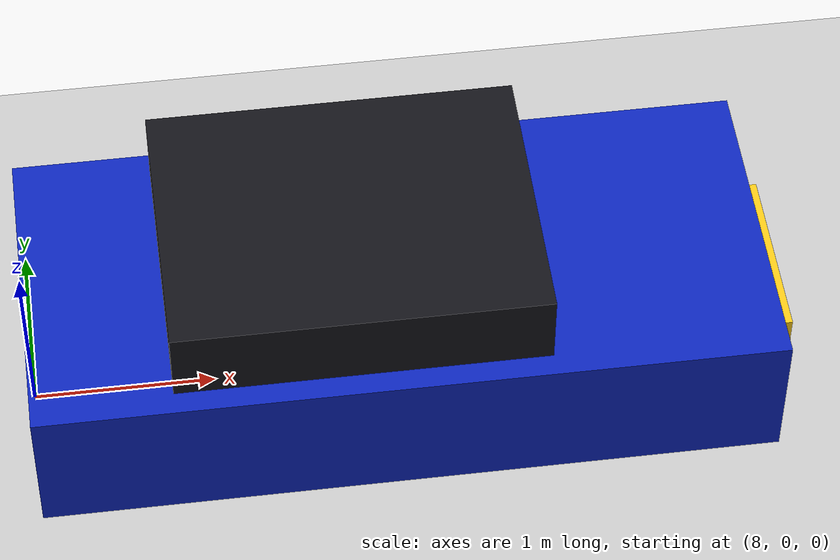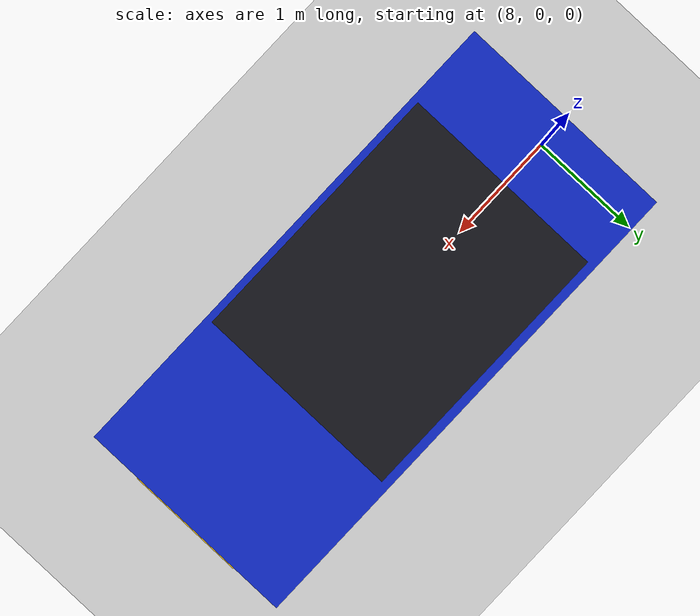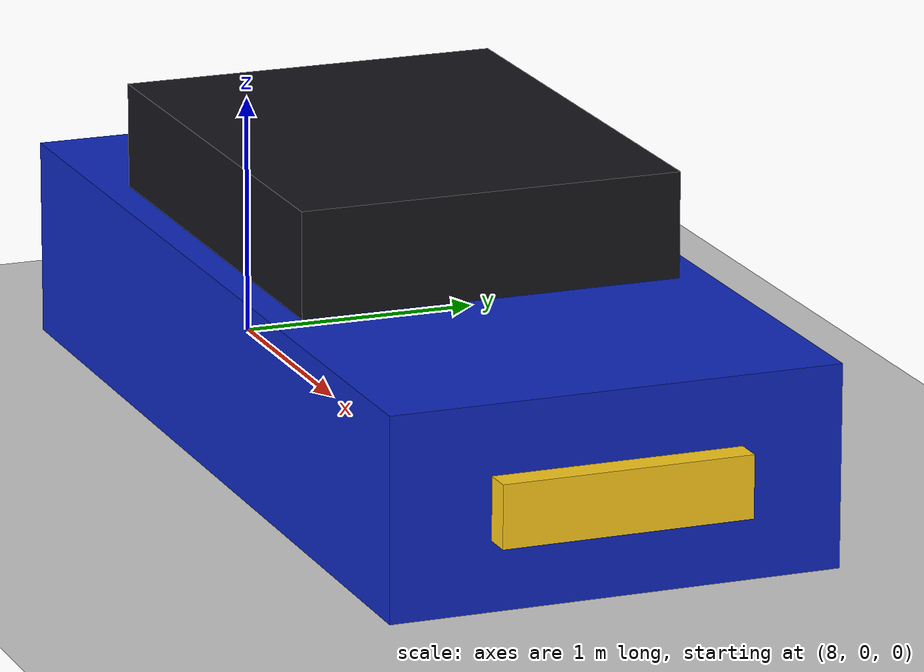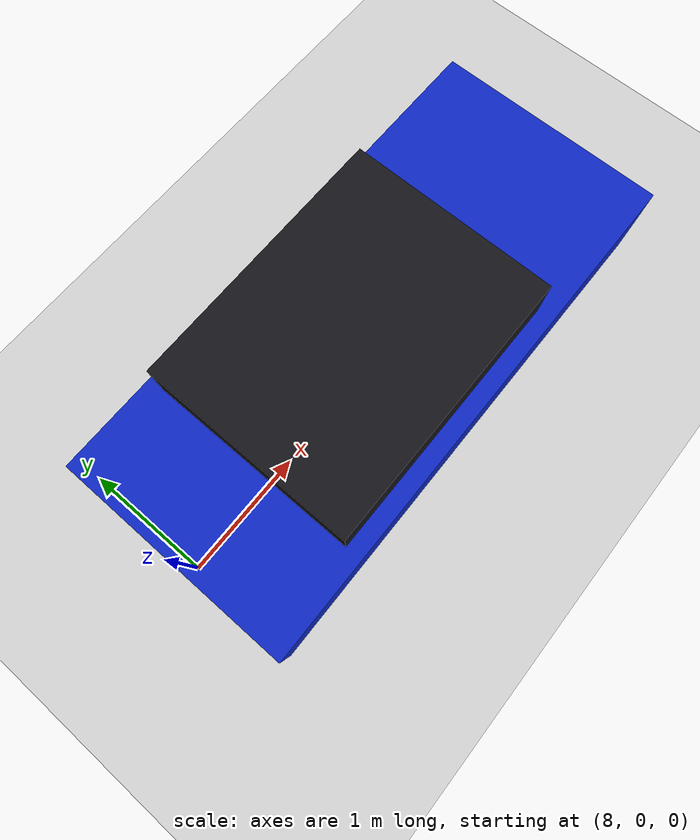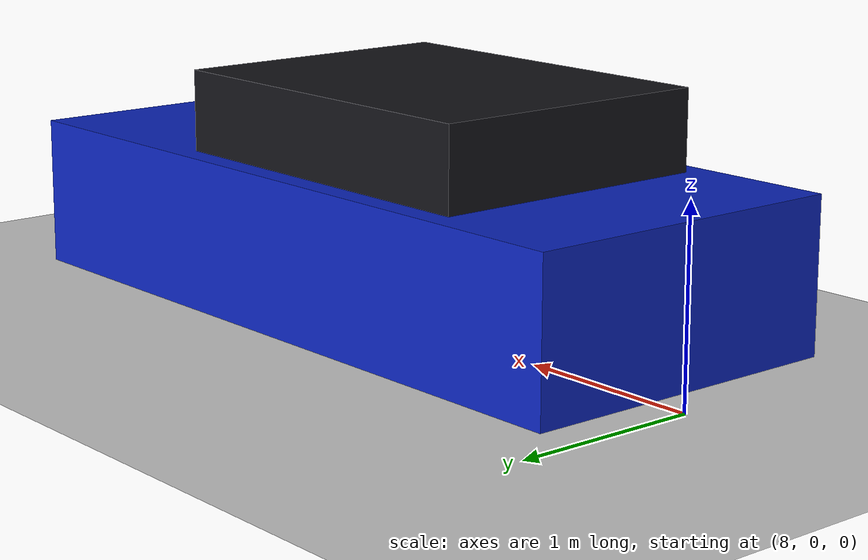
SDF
<?xml version="1.0" encoding="UTF-8"?>
<sdf version="1.9">
  <world name="default">
    <physics type="ode">
      <max_step_size>0.004</max_step_size>
      <real_time_factor>1.0</real_time_factor>
      <real_time_update_rate>250</real_time_update_rate>
    </physics>
    <gravity>0 0 -9.8</gravity>
    <magnetic_field>6e-06 2.3e-05 -4.2e-05</magnetic_field>
    <atmosphere type="adiabatic"/>

    <scene>
      <grid>true</grid>
      <ambient>0.4 0.4 0.4 1</ambient>
      <background>0.7 0.7 0.7 1</background>
      <shadows>true</shadows>
    </scene>

    <model name="ground_plane">
      <static>true</static>
      <link name="link">
        <collision name="collision">
          <geometry><plane><normal>0 0 1</normal><size>500 500</size></plane></geometry>
        </collision>
        <visual name="visual">
          <geometry><plane><normal>0 0 1</normal><size>500 500</size></plane></geometry>
          <material>
            <ambient>0.8 0.8 0.8 1</ambient>
            <diffuse>0.8 0.8 0.8 1</diffuse>
            <specular>0.2 0.2 0.2 1</specular>
          </material>
        </visual>
      </link>
    </model>

    <model name="car">
      <pose>10 0 0.5 0 0 0</pose>
      <static>false</static>
      <self_collide>false</self_collide>
      <allow_auto_disable>false</allow_auto_disable>
      <link name="chassis">
        <gravity>false</gravity>
        <inertial>
          <mass>1200</mass>
          <inertia>
            <ixx>350</ixx><ixy>0</ixy><ixz>0</ixz>
            <iyy>1200</iyy><iyz>0</iyz><izz>1300</izz>
          </inertia>
        </inertial>
        <collision name="body_collision">
          <geometry><box><size>4.0 1.8 0.8</size></box></geometry>
        </collision>
        <visual name="body_visual">
          <geometry><box><size>4.0 1.8 0.8</size></box></geometry>
          <material>
            <ambient>0.05 0.15 0.75 1</ambient>
            <diffuse>0.05 0.15 0.75 1</diffuse>
          </material>
        </visual>
        <visual name="roof_visual">
          <pose>-0.25 0 0.55 0 0 0</pose>
          <geometry><box><size>2.0 1.55 0.55</size></box></geometry>
          <material>
            <ambient>0.08 0.08 0.10 1</ambient>
            <diffuse>0.08 0.08 0.10 1</diffuse>
          </material>
        </visual>
        <visual name="front_marker">
          <pose>2.05 0 0.0 0 0 0</pose>
          <geometry><box><size>0.12 1.0 0.25</size></box></geometry>
          <material><ambient>1 0.8 0.1 1</ambient><diffuse>1 0.8 0.1 1</diffuse></material>
        </visual>
      </link>
      <plugin filename="libcar_motion_plugin.so" name="drone_assessment::FigureEightMotion">
        <center_x>10.0</center_x>
        <center_y>0.0</center_y>
        <height>0.5</height>
        <amplitude_x>10.0</amplitude_x>
        <amplitude_y>6.0</amplitude_y>
        <period_s>28.0</period_s>
      </plugin>
      <plugin filename="gz-sim-odometry-publisher-system" name="gz::sim::systems::OdometryPublisher">
        <odom_frame>world</odom_frame>
        <robot_base_frame>car</robot_base_frame>
        <odom_publish_frequency>50</odom_publish_frequency>
        <odom_topic>/car/odometry</odom_topic>
        <dimensions>3</dimensions>
      </plugin>
    </model>

    <light name="sunUTC" type="directional">
      <pose>0 0 500 0 0 0</pose>
      <cast_shadows>true</cast_shadows>
      <intensity>1</intensity>
      <direction>0.001 0.625 -0.78</direction>
      <diffuse>0.904 0.904 0.904 1</diffuse>
      <specular>0.271 0.271 0.271 1</specular>
      <attenuation><range>2000</range><linear>0</linear><constant>1</constant><quadratic>0</quadratic></attenuation>
    </light>

    <spherical_coordinates>
      <surface_model>EARTH_WGS84</surface_model>
      <world_frame_orientation>ENU</world_frame_orientation>
      <latitude_deg>47.397971057728974</latitude_deg>
      <longitude_deg>8.546163739800146</longitude_deg>
      <elevation>0</elevation>
    </spherical_coordinates>
  </world>
</sdf>
